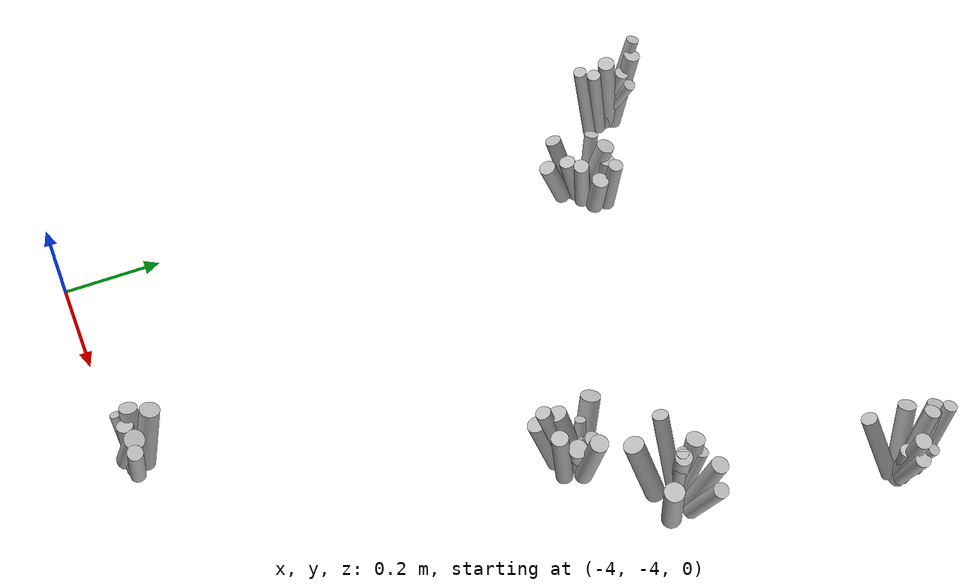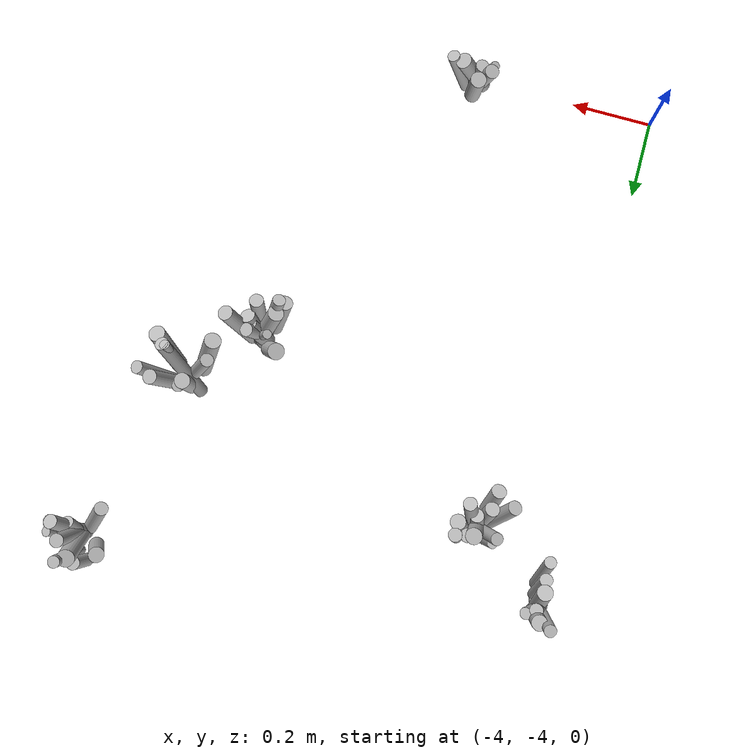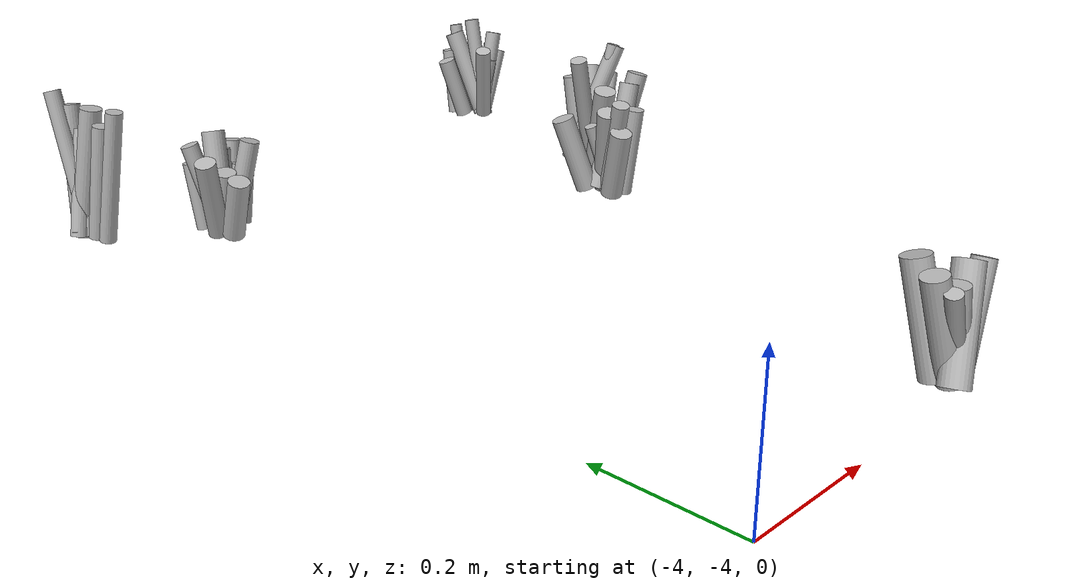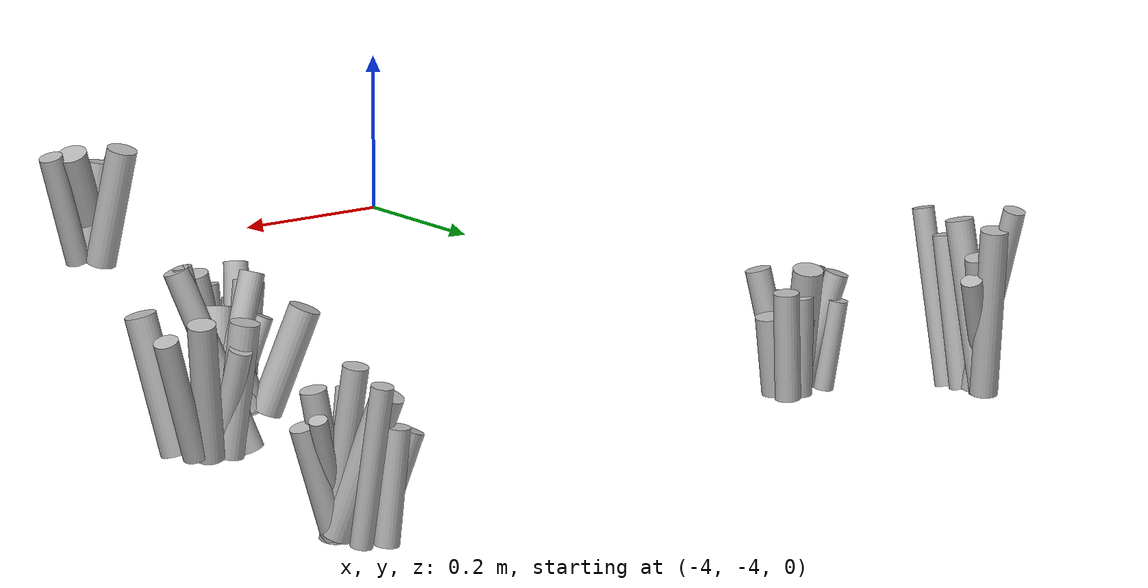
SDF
<sdf version="1.6">
 <world name="default">
  <model name="tussocks">
   <static>true</static>
   <link name="tuft44_0">
    <pose>-3.8779 -2.9359 0.0636 0 0.3704 3.8257</pose>
    <visual name="tuft44_0_v">
     <geometry><cylinder><radius>0.0167</radius><length>0.1382</length></cylinder></geometry>
     <material>
      <script>
       <uri>model://bushfire/materials/scripts</uri>
       <uri>model://bushfire/materials/textures</uri>
       <name>Bushfire/Tussock</name>
      </script>
     </material>
    </visual>
   </link>
   <link name="tuft44_1">
    <pose>-3.8312 -2.8886 0.0445 0 0.2802 1.2276</pose>
    <visual name="tuft44_1_v">
     <geometry><cylinder><radius>0.0159</radius><length>0.0968</length></cylinder></geometry>
     <material>
      <script>
       <uri>model://bushfire/materials/scripts</uri>
       <uri>model://bushfire/materials/textures</uri>
       <name>Bushfire/Tussock</name>
      </script>
     </material>
    </visual>
   </link>
   <link name="tuft44_2">
    <pose>-3.8311 -2.9073 0.0420 0 0.2559 5.4056</pose>
    <visual name="tuft44_2_v">
     <geometry><cylinder><radius>0.0162</radius><length>0.0914</length></cylinder></geometry>
     <material>
      <script>
       <uri>model://bushfire/materials/scripts</uri>
       <uri>model://bushfire/materials/textures</uri>
       <name>Bushfire/Foliage2</name>
      </script>
     </material>
    </visual>
   </link>
   <link name="tuft44_3">
    <pose>-3.7925 -2.8917 0.0447 0 0.1387 0.2238</pose>
    <visual name="tuft44_3_v">
     <geometry><cylinder><radius>0.0181</radius><length>0.0973</length></cylinder></geometry>
     <material>
      <script>
       <uri>model://bushfire/materials/scripts</uri>
       <uri>model://bushfire/materials/textures</uri>
       <name>Bushfire/Tussock</name>
      </script>
     </material>
    </visual>
   </link>
   <link name="tuft44_4">
    <pose>-3.8572 -2.8864 0.0674 0 0.3007 2.5224</pose>
    <visual name="tuft44_4_v">
     <geometry><cylinder><radius>0.0144</radius><length>0.1465</length></cylinder></geometry>
     <material>
      <script>
       <uri>model://bushfire/materials/scripts</uri>
       <uri>model://bushfire/materials/textures</uri>
       <name>Bushfire/Foliage2</name>
      </script>
     </material>
    </visual>
   </link>
   <link name="tuft44_5">
    <pose>-3.8300 -2.8839 0.0730 0 0.2558 1.2533</pose>
    <visual name="tuft44_5_v">
     <geometry><cylinder><radius>0.0187</radius><length>0.1587</length></cylinder></geometry>
     <material>
      <script>
       <uri>model://bushfire/materials/scripts</uri>
       <uri>model://bushfire/materials/textures</uri>
       <name>Bushfire/Tussock</name>
      </script>
     </material>
    </visual>
   </link>
   <link name="tuft44_6">
    <pose>-3.7903 -2.8623 0.0613 0 0.1012 0.7117</pose>
    <visual name="tuft44_6_v">
     <geometry><cylinder><radius>0.0156</radius><length>0.1333</length></cylinder></geometry>
     <material>
      <script>
       <uri>model://bushfire/materials/scripts</uri>
       <uri>model://bushfire/materials/textures</uri>
       <name>Bushfire/Tussock</name>
      </script>
     </material>
    </visual>
   </link>
   <link name="tuft44_7">
    <pose>-3.8523 -2.9636 0.0478 0 0.3607 4.4525</pose>
    <visual name="tuft44_7_v">
     <geometry><cylinder><radius>0.0177</radius><length>0.1039</length></cylinder></geometry>
     <material>
      <script>
       <uri>model://bushfire/materials/scripts</uri>
       <uri>model://bushfire/materials/textures</uri>
       <name>Bushfire/Foliage2</name>
      </script>
     </material>
    </visual>
   </link>
   <link name="tuft44_8">
    <pose>-3.8473 -2.9271 0.0491 0 0.2258 4.2887</pose>
    <visual name="tuft44_8_v">
     <geometry><cylinder><radius>0.0170</radius><length>0.1066</length></cylinder></geometry>
     <material>
      <script>
       <uri>model://bushfire/materials/scripts</uri>
       <uri>model://bushfire/materials/textures</uri>
       <name>Bushfire/Tussock</name>
      </script>
     </material>
    </visual>
   </link>
   <link name="tuft44_9">
    <pose>-3.8642 -2.8716 0.0511 0 0.1581 2.3289</pose>
    <visual name="tuft44_9_v">
     <geometry><cylinder><radius>0.0120</radius><length>0.1110</length></cylinder></geometry>
     <material>
      <script>
       <uri>model://bushfire/materials/scripts</uri>
       <uri>model://bushfire/materials/textures</uri>
       <name>Bushfire/Tussock</name>
      </script>
     </material>
    </visual>
   </link>
   <link name="tuft44_10">
    <pose>-3.8113 -2.9212 0.0687 0 0.2129 5.6107</pose>
    <visual name="tuft44_10_v">
     <geometry><cylinder><radius>0.0158</radius><length>0.1495</length></cylinder></geometry>
     <material>
      <script>
       <uri>model://bushfire/materials/scripts</uri>
       <uri>model://bushfire/materials/textures</uri>
       <name>Bushfire/Tussock</name>
      </script>
     </material>
    </visual>
   </link>
   <link name="tuft44_11">
    <pose>-3.8162 -2.8714 0.0573 0 0.1145 0.9952</pose>
    <visual name="tuft44_11_v">
     <geometry><cylinder><radius>0.0163</radius><length>0.1245</length></cylinder></geometry>
     <material>
      <script>
       <uri>model://bushfire/materials/scripts</uri>
       <uri>model://bushfire/materials/textures</uri>
       <name>Bushfire/Foliage2</name>
      </script>
     </material>
    </visual>
   </link>
   <link name="tuft87_0">
    <pose>-3.2434 -3.2287 0.0812 0 0.3260 4.1371</pose>
    <visual name="tuft87_0_v">
     <geometry><cylinder><radius>0.0151</radius><length>0.1766</length></cylinder></geometry>
     <material>
      <script>
       <uri>model://bushfire/materials/scripts</uri>
       <uri>model://bushfire/materials/textures</uri>
       <name>Bushfire/Foliage2</name>
      </script>
     </material>
    </visual>
   </link>
   <link name="tuft87_1">
    <pose>-3.2082 -3.2325 0.0706 0 0.1176 4.9588</pose>
    <visual name="tuft87_1_v">
     <geometry><cylinder><radius>0.0167</radius><length>0.1536</length></cylinder></geometry>
     <material>
      <script>
       <uri>model://bushfire/materials/scripts</uri>
       <uri>model://bushfire/materials/textures</uri>
       <name>Bushfire/Foliage2</name>
      </script>
     </material>
    </visual>
   </link>
   <link name="tuft87_2">
    <pose>-3.2374 -3.2068 0.0725 0 0.3524 3.8522</pose>
    <visual name="tuft87_2_v">
     <geometry><cylinder><radius>0.0192</radius><length>0.1577</length></cylinder></geometry>
     <material>
      <script>
       <uri>model://bushfire/materials/scripts</uri>
       <uri>model://bushfire/materials/textures</uri>
       <name>Bushfire/Tussock</name>
      </script>
     </material>
    </visual>
   </link>
   <link name="tuft87_3">
    <pose>-3.2173 -3.1909 0.0501 0 0.3734 6.1119</pose>
    <visual name="tuft87_3_v">
     <geometry><cylinder><radius>0.0192</radius><length>0.1088</length></cylinder></geometry>
     <material>
      <script>
       <uri>model://bushfire/materials/scripts</uri>
       <uri>model://bushfire/materials/textures</uri>
       <name>Bushfire/Foliage2</name>
      </script>
     </material>
    </visual>
   </link>
   <link name="tuft87_4">
    <pose>-3.2152 -3.1881 0.0569 0 0.3391 0.6475</pose>
    <visual name="tuft87_4_v">
     <geometry><cylinder><radius>0.0161</radius><length>0.1237</length></cylinder></geometry>
     <material>
      <script>
       <uri>model://bushfire/materials/scripts</uri>
       <uri>model://bushfire/materials/textures</uri>
       <name>Bushfire/Foliage2</name>
      </script>
     </material>
    </visual>
   </link>
   <link name="tuft87_5">
    <pose>-3.2294 -3.1865 0.0559 0 0.3431 2.7725</pose>
    <visual name="tuft87_5_v">
     <geometry><cylinder><radius>0.0110</radius><length>0.1215</length></cylinder></geometry>
     <material>
      <script>
       <uri>model://bushfire/materials/scripts</uri>
       <uri>model://bushfire/materials/textures</uri>
       <name>Bushfire/Tussock</name>
      </script>
     </material>
    </visual>
   </link>
   <link name="tuft87_6">
    <pose>-3.2634 -3.1573 0.0624 0 0.3562 2.5007</pose>
    <visual name="tuft87_6_v">
     <geometry><cylinder><radius>0.0196</radius><length>0.1356</length></cylinder></geometry>
     <material>
      <script>
       <uri>model://bushfire/materials/scripts</uri>
       <uri>model://bushfire/materials/textures</uri>
       <name>Bushfire/Foliage2</name>
      </script>
     </material>
    </visual>
   </link>
   <link name="tuft87_7">
    <pose>-3.1753 -3.1882 0.0859 0 0.2509 0.0576</pose>
    <visual name="tuft87_7_v">
     <geometry><cylinder><radius>0.0175</radius><length>0.1868</length></cylinder></geometry>
     <material>
      <script>
       <uri>model://bushfire/materials/scripts</uri>
       <uri>model://bushfire/materials/textures</uri>
       <name>Bushfire/Tussock</name>
      </script>
     </material>
    </visual>
   </link>
   <link name="tuft87_8">
    <pose>-3.2547 -3.2435 0.0587 0 0.3426 4.1145</pose>
    <visual name="tuft87_8_v">
     <geometry><cylinder><radius>0.0188</radius><length>0.1277</length></cylinder></geometry>
     <material>
      <script>
       <uri>model://bushfire/materials/scripts</uri>
       <uri>model://bushfire/materials/textures</uri>
       <name>Bushfire/Tussock</name>
      </script>
     </material>
    </visual>
   </link>
   <link name="tuft87_9">
    <pose>-3.2104 -3.1962 0.0561 0 0.3909 5.6926</pose>
    <visual name="tuft87_9_v">
     <geometry><cylinder><radius>0.0181</radius><length>0.1220</length></cylinder></geometry>
     <material>
      <script>
       <uri>model://bushfire/materials/scripts</uri>
       <uri>model://bushfire/materials/textures</uri>
       <name>Bushfire/Tussock</name>
      </script>
     </material>
    </visual>
   </link>
   <link name="tuft91_0">
    <pose>-3.5344 -3.9785 0.0702 0 0.4059 0.3850</pose>
    <visual name="tuft91_0_v">
     <geometry><cylinder><radius>0.0198</radius><length>0.1526</length></cylinder></geometry>
     <material>
      <script>
       <uri>model://bushfire/materials/scripts</uri>
       <uri>model://bushfire/materials/textures</uri>
       <name>Bushfire/Foliage2</name>
      </script>
     </material>
    </visual>
   </link>
   <link name="tuft91_2">
    <pose>-3.5492 -3.9410 0.0719 0 0.2338 1.8675</pose>
    <visual name="tuft91_2_v">
     <geometry><cylinder><radius>0.0195</radius><length>0.1562</length></cylinder></geometry>
     <material>
      <script>
       <uri>model://bushfire/materials/scripts</uri>
       <uri>model://bushfire/materials/textures</uri>
       <name>Bushfire/Foliage2</name>
      </script>
     </material>
    </visual>
   </link>
   <link name="tuft91_4">
    <pose>-3.5450 -3.9779 0.0593 0 0.1350 2.9102</pose>
    <visual name="tuft91_4_v">
     <geometry><cylinder><radius>0.0162</radius><length>0.1290</length></cylinder></geometry>
     <material>
      <script>
       <uri>model://bushfire/materials/scripts</uri>
       <uri>model://bushfire/materials/textures</uri>
       <name>Bushfire/Foliage2</name>
      </script>
     </material>
    </visual>
   </link>
   <link name="tuft91_5">
    <pose>-3.5618 -3.9685 0.0675 0 0.2857 2.7108</pose>
    <visual name="tuft91_5_v">
     <geometry><cylinder><radius>0.0178</radius><length>0.1466</length></cylinder></geometry>
     <material>
      <script>
       <uri>model://bushfire/materials/scripts</uri>
       <uri>model://bushfire/materials/textures</uri>
       <name>Bushfire/Tussock</name>
      </script>
     </material>
    </visual>
   </link>
   <link name="tuft91_6">
    <pose>-3.5570 -3.9821 0.0623 0 0.4189 3.2649</pose>
    <visual name="tuft91_6_v">
     <geometry><cylinder><radius>0.0112</radius><length>0.1355</length></cylinder></geometry>
     <material>
      <script>
       <uri>model://bushfire/materials/scripts</uri>
       <uri>model://bushfire/materials/textures</uri>
       <name>Bushfire/Tussock</name>
      </script>
     </material>
    </visual>
   </link>
   <link name="tuft91_7">
    <pose>-3.5010 -3.9760 0.0680 0 0.2983 0.1011</pose>
    <visual name="tuft91_7_v">
     <geometry><cylinder><radius>0.0154</radius><length>0.1477</length></cylinder></geometry>
     <material>
      <script>
       <uri>model://bushfire/materials/scripts</uri>
       <uri>model://bushfire/materials/textures</uri>
       <name>Bushfire/Foliage2</name>
      </script>
     </material>
    </visual>
   </link>
   <link name="tuft129_1">
    <pose>-4.0062 -2.7610 0.0789 0 0.2200 0.5826</pose>
    <visual name="tuft129_1_v">
     <geometry><cylinder><radius>0.0147</radius><length>0.1716</length></cylinder></geometry>
     <material>
      <script>
       <uri>model://bushfire/materials/scripts</uri>
       <uri>model://bushfire/materials/textures</uri>
       <name>Bushfire/Foliage2</name>
      </script>
     </material>
    </visual>
   </link>
   <link name="tuft129_2">
    <pose>-3.9979 -2.7554 0.0695 0 0.4032 0.5875</pose>
    <visual name="tuft129_2_v">
     <geometry><cylinder><radius>0.0132</radius><length>0.1510</length></cylinder></geometry>
     <material>
      <script>
       <uri>model://bushfire/materials/scripts</uri>
       <uri>model://bushfire/materials/textures</uri>
       <name>Bushfire/Tussock</name>
      </script>
     </material>
    </visual>
   </link>
   <link name="tuft129_3">
    <pose>-4.0022 -2.7744 0.0978 0 0.1554 5.2361</pose>
    <visual name="tuft129_3_v">
     <geometry><cylinder><radius>0.0174</radius><length>0.2125</length></cylinder></geometry>
     <material>
      <script>
       <uri>model://bushfire/materials/scripts</uri>
       <uri>model://bushfire/materials/textures</uri>
       <name>Bushfire/Foliage2</name>
      </script>
     </material>
    </visual>
   </link>
   <link name="tuft129_5">
    <pose>-3.9932 -2.8338 0.0999 0 0.1738 4.9308</pose>
    <visual name="tuft129_5_v">
     <geometry><cylinder><radius>0.0134</radius><length>0.2172</length></cylinder></geometry>
     <material>
      <script>
       <uri>model://bushfire/materials/scripts</uri>
       <uri>model://bushfire/materials/textures</uri>
       <name>Bushfire/Tussock</name>
      </script>
     </material>
    </visual>
   </link>
   <link name="tuft129_8">
    <pose>-4.0021 -2.7405 0.0962 0 0.1445 1.2716</pose>
    <visual name="tuft129_8_v">
     <geometry><cylinder><radius>0.0171</radius><length>0.2091</length></cylinder></geometry>
     <material>
      <script>
       <uri>model://bushfire/materials/scripts</uri>
       <uri>model://bushfire/materials/textures</uri>
       <name>Bushfire/Foliage2</name>
      </script>
     </material>
    </visual>
   </link>
   <link name="tuft129_9">
    <pose>-4.0126 -2.7468 0.1089 0 0.2715 1.7961</pose>
    <visual name="tuft129_9_v">
     <geometry><cylinder><radius>0.0136</radius><length>0.2367</length></cylinder></geometry>
     <material>
      <script>
       <uri>model://bushfire/materials/scripts</uri>
       <uri>model://bushfire/materials/textures</uri>
       <name>Bushfire/Tussock</name>
      </script>
     </material>
    </visual>
   </link>
   <link name="tuft129_11">
    <pose>-3.9971 -2.8036 0.0864 0 0.1433 4.9938</pose>
    <visual name="tuft129_11_v">
     <geometry><cylinder><radius>0.0144</radius><length>0.1878</length></cylinder></geometry>
     <material>
      <script>
       <uri>model://bushfire/materials/scripts</uri>
       <uri>model://bushfire/materials/textures</uri>
       <name>Bushfire/Foliage2</name>
      </script>
     </material>
    </visual>
   </link>
   <link name="tuft163_0">
    <pose>-3.1241 -3.1010 0.0739 0 0.3338 4.0691</pose>
    <visual name="tuft163_0_v">
     <geometry><cylinder><radius>0.0199</radius><length>0.1607</length></cylinder></geometry>
     <material>
      <script>
       <uri>model://bushfire/materials/scripts</uri>
       <uri>model://bushfire/materials/textures</uri>
       <name>Bushfire/Foliage2</name>
      </script>
     </material>
    </visual>
   </link>
   <link name="tuft163_1">
    <pose>-3.0841 -3.0488 0.1075 0 0.3820 5.7414</pose>
    <visual name="tuft163_1_v">
     <geometry><cylinder><radius>0.0159</radius><length>0.2338</length></cylinder></geometry>
     <material>
      <script>
       <uri>model://bushfire/materials/scripts</uri>
       <uri>model://bushfire/materials/textures</uri>
       <name>Bushfire/Foliage2</name>
      </script>
     </material>
    </visual>
   </link>
   <link name="tuft163_2">
    <pose>-3.0320 -3.0878 0.0790 0 0.2456 5.6413</pose>
    <visual name="tuft163_2_v">
     <geometry><cylinder><radius>0.0193</radius><length>0.1717</length></cylinder></geometry>
     <material>
      <script>
       <uri>model://bushfire/materials/scripts</uri>
       <uri>model://bushfire/materials/textures</uri>
       <name>Bushfire/Tussock</name>
      </script>
     </material>
    </visual>
   </link>
   <link name="tuft163_3">
    <pose>-3.0989 -3.0230 0.0755 0 0.1338 2.0811</pose>
    <visual name="tuft163_3_v">
     <geometry><cylinder><radius>0.0182</radius><length>0.1642</length></cylinder></geometry>
     <material>
      <script>
       <uri>model://bushfire/materials/scripts</uri>
       <uri>model://bushfire/materials/textures</uri>
       <name>Bushfire/Tussock</name>
      </script>
     </material>
    </visual>
   </link>
   <link name="tuft163_4">
    <pose>-3.0497 -3.0158 0.0811 0 0.2603 0.7510</pose>
    <visual name="tuft163_4_v">
     <geometry><cylinder><radius>0.0171</radius><length>0.1763</length></cylinder></geometry>
     <material>
      <script>
       <uri>model://bushfire/materials/scripts</uri>
       <uri>model://bushfire/materials/textures</uri>
       <name>Bushfire/Tussock</name>
      </script>
     </material>
    </visual>
   </link>
   <link name="tuft163_5">
    <pose>-3.0761 -3.0546 0.1065 0 0.2311 5.6584</pose>
    <visual name="tuft163_5_v">
     <geometry><cylinder><radius>0.0117</radius><length>0.2316</length></cylinder></geometry>
     <material>
      <script>
       <uri>model://bushfire/materials/scripts</uri>
       <uri>model://bushfire/materials/textures</uri>
       <name>Bushfire/Foliage2</name>
      </script>
     </material>
    </visual>
   </link>
   <link name="tuft163_6">
    <pose>-3.1180 -3.0573 0.0993 0 0.3340 3.4017</pose>
    <visual name="tuft163_6_v">
     <geometry><cylinder><radius>0.0153</radius><length>0.2158</length></cylinder></geometry>
     <material>
      <script>
       <uri>model://bushfire/materials/scripts</uri>
       <uri>model://bushfire/materials/textures</uri>
       <name>Bushfire/Tussock</name>
      </script>
     </material>
    </visual>
   </link>
   <link name="tuft163_7">
    <pose>-3.0889 -3.0230 0.0620 0 0.2801 1.7367</pose>
    <visual name="tuft163_7_v">
     <geometry><cylinder><radius>0.0142</radius><length>0.1349</length></cylinder></geometry>
     <material>
      <script>
       <uri>model://bushfire/materials/scripts</uri>
       <uri>model://bushfire/materials/textures</uri>
       <name>Bushfire/Tussock</name>
      </script>
     </material>
    </visual>
   </link>
   <link name="tuft163_8">
    <pose>-3.0207 -3.0257 0.0738 0 0.3705 0.3416</pose>
    <visual name="tuft163_8_v">
     <geometry><cylinder><radius>0.0152</radius><length>0.1604</length></cylinder></geometry>
     <material>
      <script>
       <uri>model://bushfire/materials/scripts</uri>
       <uri>model://bushfire/materials/textures</uri>
       <name>Bushfire/Foliage2</name>
      </script>
     </material>
    </visual>
   </link>
   <link name="tuft168_0">
    <pose>-2.9973 -2.5719 0.0645 0 0.1034 2.0623</pose>
    <visual name="tuft168_0_v">
     <geometry><cylinder><radius>0.0149</radius><length>0.1402</length></cylinder></geometry>
     <material>
      <script>
       <uri>model://bushfire/materials/scripts</uri>
       <uri>model://bushfire/materials/textures</uri>
       <name>Bushfire/Foliage2</name>
      </script>
     </material>
    </visual>
   </link>
   <link name="tuft168_1">
    <pose>-3.0002 -2.6711 0.0758 0 0.4149 3.8903</pose>
    <visual name="tuft168_1_v">
     <geometry><cylinder><radius>0.0156</radius><length>0.1649</length></cylinder></geometry>
     <material>
      <script>
       <uri>model://bushfire/materials/scripts</uri>
       <uri>model://bushfire/materials/textures</uri>
       <name>Bushfire/Tussock</name>
      </script>
     </material>
    </visual>
   </link>
   <link name="tuft168_2">
    <pose>-2.9716 -2.5757 0.0902 0 0.1810 1.7145</pose>
    <visual name="tuft168_2_v">
     <geometry><cylinder><radius>0.0134</radius><length>0.1960</length></cylinder></geometry>
     <material>
      <script>
       <uri>model://bushfire/materials/scripts</uri>
       <uri>model://bushfire/materials/textures</uri>
       <name>Bushfire/Foliage2</name>
      </script>
     </material>
    </visual>
   </link>
   <link name="tuft168_3">
    <pose>-2.9655 -2.6213 0.0976 0 0.1808 1.7528</pose>
    <visual name="tuft168_3_v">
     <geometry><cylinder><radius>0.0153</radius><length>0.2122</length></cylinder></geometry>
     <material>
      <script>
       <uri>model://bushfire/materials/scripts</uri>
       <uri>model://bushfire/materials/textures</uri>
       <name>Bushfire/Tussock</name>
      </script>
     </material>
    </visual>
   </link>
   <link name="tuft168_4">
    <pose>-2.9406 -2.6363 0.0649 0 0.3179 0.0007</pose>
    <visual name="tuft168_4_v">
     <geometry><cylinder><radius>0.0154</radius><length>0.1410</length></cylinder></geometry>
     <material>
      <script>
       <uri>model://bushfire/materials/scripts</uri>
       <uri>model://bushfire/materials/textures</uri>
       <name>Bushfire/Tussock</name>
      </script>
     </material>
    </visual>
   </link>
   <link name="tuft168_5">
    <pose>-2.9613 -2.6378 0.0562 0 0.1818 5.5016</pose>
    <visual name="tuft168_5_v">
     <geometry><cylinder><radius>0.0136</radius><length>0.1222</length></cylinder></geometry>
     <material>
      <script>
       <uri>model://bushfire/materials/scripts</uri>
       <uri>model://bushfire/materials/textures</uri>
       <name>Bushfire/Foliage2</name>
      </script>
     </material>
    </visual>
   </link>
   <link name="tuft168_7">
    <pose>-2.9524 -2.6363 0.0839 0 0.2100 6.2818</pose>
    <visual name="tuft168_7_v">
     <geometry><cylinder><radius>0.0158</radius><length>0.1824</length></cylinder></geometry>
     <material>
      <script>
       <uri>model://bushfire/materials/scripts</uri>
       <uri>model://bushfire/materials/textures</uri>
       <name>Bushfire/Tussock</name>
      </script>
     </material>
    </visual>
   </link>
   <link name="tuft168_8">
    <pose>-2.9506 -2.6291 0.0719 0 0.4120 0.5316</pose>
    <visual name="tuft168_8_v">
     <geometry><cylinder><radius>0.0111</radius><length>0.1563</length></cylinder></geometry>
     <material>
      <script>
       <uri>model://bushfire/materials/scripts</uri>
       <uri>model://bushfire/materials/textures</uri>
       <name>Bushfire/Tussock</name>
      </script>
     </material>
    </visual>
   </link>
   <link name="tuft168_9">
    <pose>-2.9779 -2.6030 0.0851 0 0.3772 1.9961</pose>
    <visual name="tuft168_9_v">
     <geometry><cylinder><radius>0.0196</radius><length>0.1849</length></cylinder></geometry>
     <material>
      <script>
       <uri>model://bushfire/materials/scripts</uri>
       <uri>model://bushfire/materials/textures</uri>
       <name>Bushfire/Tussock</name>
      </script>
     </material>
    </visual>
   </link>
   <link name="tuft168_11">
    <pose>-3.0214 -2.6060 0.0588 0 0.3308 2.6650</pose>
    <visual name="tuft168_11_v">
     <geometry><cylinder><radius>0.0176</radius><length>0.1279</length></cylinder></geometry>
     <material>
      <script>
       <uri>model://bushfire/materials/scripts</uri>
       <uri>model://bushfire/materials/textures</uri>
       <name>Bushfire/Foliage2</name>
      </script>
     </material>
    </visual>
   </link>
  </model>
 </world>
</sdf>
